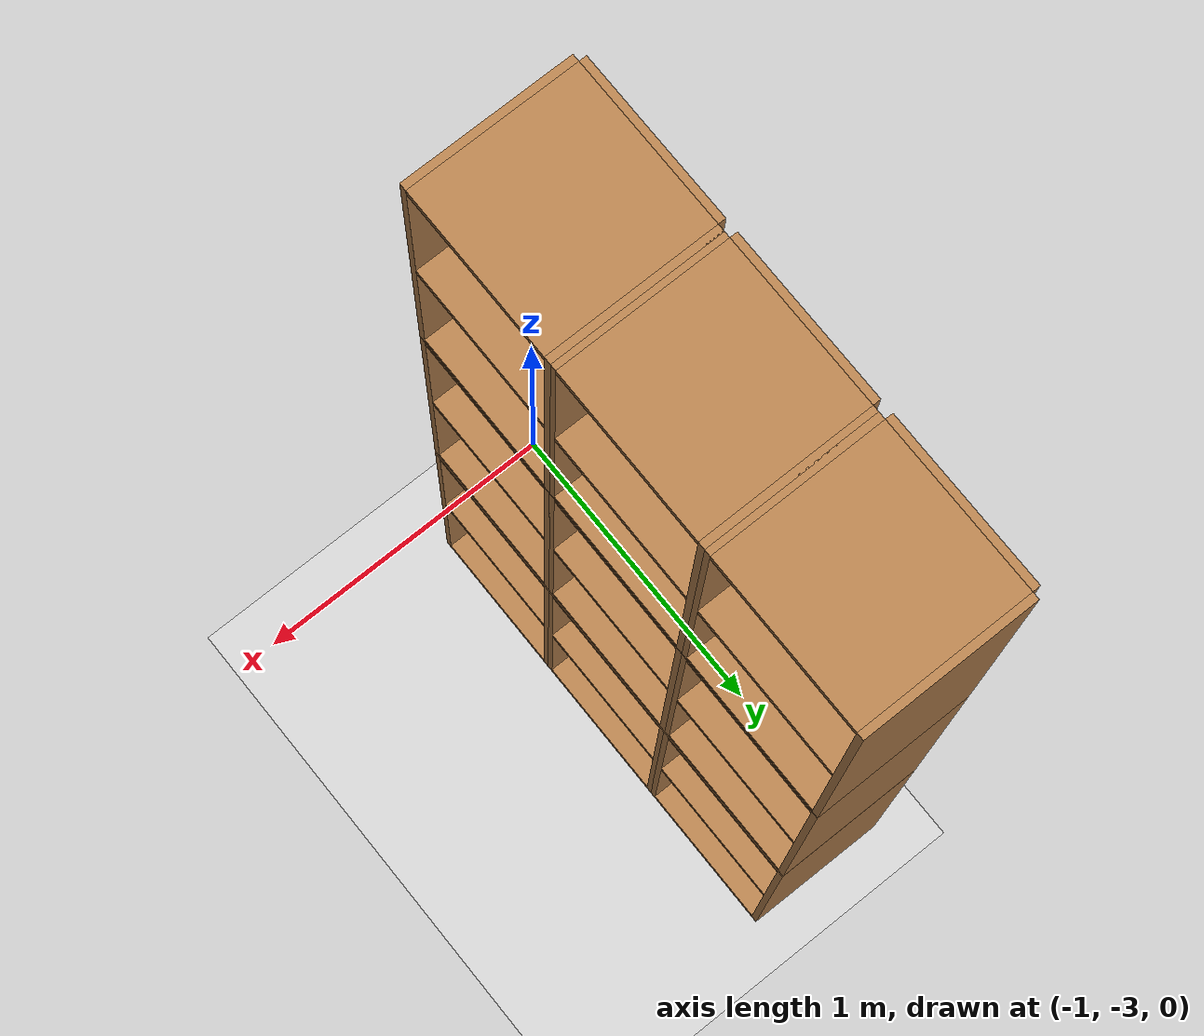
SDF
<sdf version="1.6">
 <world name="default">
  <model name="ground_plane">
   <static>1</static>
   <link name="link">
    <collision name="collision">
     <geometry><plane><normal>0 0 1</normal><size>100 100</size></plane></geometry>
     <surface>
      <contact><collide_bitmask>65535</collide_bitmask></contact>
      <friction><ode><mu>100</mu><mu2>50</mu2></ode></friction>
     </surface>
    </collision>
    <visual name="visual">
     <cast_shadows>0</cast_shadows>
     <geometry><plane><normal>0 0 1</normal><size>100 100</size></plane></geometry>
     <material>
      <script><uri>file://media/materials/scripts/gazebo.material</uri><name>Gazebo/Grey</name></script>
     </material>
    </visual>
   </link>
  </model>
  <model name="Locker18_clone_4_clone_2_clone_1_clone_clone_clone_2_clone_clone_2_clone">
   <model name="Locker18">
    <model name="Locker3">
     <model name="cabinet">
      <static>1</static>
      <link name="cabinet_bottom_plate">
       <inertial>
        <pose>0 0 -1 0 -0 0</pose>
        <inertia><ixx>2.05</ixx><ixy>0</ixy><ixz>0</ixz><iyy>2.05</iyy><iyz>0</iyz><izz>2.05</izz></inertia>
        <mass>25</mass>
       </inertial>
       <collision name="cabinet_bottom_plate_geom">
        <pose>0 0 0.01 0 -0 0</pose>
        <geometry><box><size>0.45 0.45 0.02</size></box></geometry>
       </collision>
       <visual name="cabinet_bottom_plate_geom_visual">
        <pose>0 0 0.01 0 -0 0</pose>
        <geometry><box><size>0.45 0.45 0.02</size></box></geometry>
        <material>
         <script><uri>file://media/materials/scripts/gazebo.material</uri><name>Gazebo/Wood</name></script>
        </material>
       </visual>
       <collision name="cabinet_bottom_plate_geom_cabinet_back_plate">
        <pose>0.235 0 0.51 0 -0 0</pose>
        <geometry><box><size>0.02 0.45 1.02</size></box></geometry>
       </collision>
       <visual name="cabinet_bottom_plate_geom_cabinet_back_plate_visual">
        <pose>0.235 0 0.51 0 -0 0</pose>
        <geometry><box><size>0.02 0.45 1.02</size></box></geometry>
        <material>
         <script><uri>file://media/materials/scripts/gazebo.material</uri><name>Gazebo/Wood</name></script>
        </material>
       </visual>
       <collision name="cabinet_bottom_plate_geom_cabinet_left_plate">
        <pose>0 0.235 0.51 0 -0 0</pose>
        <geometry><box><size>0.45 0.02 1.02</size></box></geometry>
       </collision>
       <visual name="cabinet_bottom_plate_geom_cabinet_left_plate_visual">
        <pose>0 0.235 0.51 0 -0 0</pose>
        <geometry><box><size>0.45 0.02 1.02</size></box></geometry>
        <material>
         <script><uri>file://media/materials/scripts/gazebo.material</uri><name>Gazebo/Wood</name></script>
        </material>
       </visual>
       <collision name="cabinet_bottom_plate_geom_cabinet_middle_plate">
        <pose>0 0 0.51 0 -0 0</pose>
        <geometry><box><size>0.45 0.45 0.02</size></box></geometry>
       </collision>
       <visual name="cabinet_bottom_plate_geom_cabinet_middle_plate_visual">
        <pose>0 0 0.51 0 -0 0</pose>
        <geometry><box><size>0.45 0.45 0.02</size></box></geometry>
        <material>
         <script><uri>file://media/materials/scripts/gazebo.material</uri><name>Gazebo/Wood</name></script>
        </material>
       </visual>
       <collision name="cabinet_bottom_plate_geom_cabinet_right_plate">
        <pose>0 -0.235 0.51 0 -0 0</pose>
        <geometry><box><size>0.45 0.02 1.02</size></box></geometry>
       </collision>
       <visual name="cabinet_bottom_plate_geom_cabinet_right_plate_visual">
        <pose>0 -0.235 0.51 0 -0 0</pose>
        <geometry><box><size>0.45 0.02 1.02</size></box></geometry>
        <material>
         <script><uri>file://media/materials/scripts/gazebo.material</uri><name>Gazebo/Wood</name></script>
        </material>
       </visual>
       <collision name="cabinet_bottom_plate_geom_cabinet_top_plate">
        <pose>0 0 1.01 0 -0 0</pose>
        <geometry><box><size>0.45 0.45 0.02</size></box></geometry>
       </collision>
       <visual name="cabinet_bottom_plate_geom_cabinet_top_plate_visual">
        <pose>0 0 1.01 0 -0 0</pose>
        <geometry><box><size>0.45 0.45 0.02</size></box></geometry>
        <material>
         <script><uri>file://media/materials/scripts/gazebo.material</uri><name>Gazebo/Wood</name></script>
        </material>
       </visual>
      </link>
      <pose>-0.676968 1.45758 0 0 -0 0</pose>
     </model>
     <model name="cabinet_clone">
      <static>1</static>
      <link name="cabinet_bottom_plate">
       <inertial>
        <pose>0 0 -1 0 -0 0</pose>
        <inertia><ixx>2.05</ixx><ixy>0</ixy><ixz>0</ixz><iyy>2.05</iyy><iyz>0</iyz><izz>2.05</izz></inertia>
        <mass>25</mass>
       </inertial>
       <collision name="cabinet_bottom_plate_geom">
        <pose>0 0 0.01 0 -0 0</pose>
        <geometry><box><size>0.45 0.45 0.02</size></box></geometry>
       </collision>
       <visual name="cabinet_bottom_plate_geom_visual">
        <pose>0 0 0.01 0 -0 0</pose>
        <geometry><box><size>0.45 0.45 0.02</size></box></geometry>
        <material>
         <script><uri>file://media/materials/scripts/gazebo.material</uri><name>Gazebo/Wood</name></script>
        </material>
       </visual>
       <collision name="cabinet_bottom_plate_geom_cabinet_back_plate">
        <pose>0.235 0 0.51 0 -0 0</pose>
        <geometry><box><size>0.02 0.45 1.02</size></box></geometry>
       </collision>
       <visual name="cabinet_bottom_plate_geom_cabinet_back_plate_visual">
        <pose>0.235 0 0.51 0 -0 0</pose>
        <geometry><box><size>0.02 0.45 1.02</size></box></geometry>
        <material>
         <script><uri>file://media/materials/scripts/gazebo.material</uri><name>Gazebo/Wood</name></script>
        </material>
       </visual>
       <collision name="cabinet_bottom_plate_geom_cabinet_left_plate">
        <pose>0 0.235 0.51 0 -0 0</pose>
        <geometry><box><size>0.45 0.02 1.02</size></box></geometry>
       </collision>
       <visual name="cabinet_bottom_plate_geom_cabinet_left_plate_visual">
        <pose>0 0.235 0.51 0 -0 0</pose>
        <geometry><box><size>0.45 0.02 1.02</size></box></geometry>
        <material>
         <script><uri>file://media/materials/scripts/gazebo.material</uri><name>Gazebo/Wood</name></script>
        </material>
       </visual>
       <collision name="cabinet_bottom_plate_geom_cabinet_middle_plate">
        <pose>0 0 0.51 0 -0 0</pose>
        <geometry><box><size>0.45 0.45 0.02</size></box></geometry>
       </collision>
       <visual name="cabinet_bottom_plate_geom_cabinet_middle_plate_visual">
        <pose>0 0 0.51 0 -0 0</pose>
        <geometry><box><size>0.45 0.45 0.02</size></box></geometry>
        <material>
         <script><uri>file://media/materials/scripts/gazebo.material</uri><name>Gazebo/Wood</name></script>
        </material>
       </visual>
       <collision name="cabinet_bottom_plate_geom_cabinet_right_plate">
        <pose>0 -0.235 0.51 0 -0 0</pose>
        <geometry><box><size>0.45 0.02 1.02</size></box></geometry>
       </collision>
       <visual name="cabinet_bottom_plate_geom_cabinet_right_plate_visual">
        <pose>0 -0.235 0.51 0 -0 0</pose>
        <geometry><box><size>0.45 0.02 1.02</size></box></geometry>
        <material>
         <script><uri>file://media/materials/scripts/gazebo.material</uri><name>Gazebo/Wood</name></script>
        </material>
       </visual>
       <collision name="cabinet_bottom_plate_geom_cabinet_top_plate">
        <pose>0 0 1.01 0 -0 0</pose>
        <geometry><box><size>0.45 0.45 0.02</size></box></geometry>
       </collision>
       <visual name="cabinet_bottom_plate_geom_cabinet_top_plate_visual">
        <pose>0 0 1.01 0 -0 0</pose>
        <geometry><box><size>0.45 0.45 0.02</size></box></geometry>
        <material>
         <script><uri>file://media/materials/scripts/gazebo.material</uri><name>Gazebo/Wood</name></script>
        </material>
       </visual>
      </link>
      <pose>-0.676968 0.970971 0 0 -0 0</pose>
     </model>
     <model name="cabinet_clone_0">
      <static>1</static>
      <link name="cabinet_bottom_plate">
       <inertial>
        <pose>0 0 -1 0 -0 0</pose>
        <inertia><ixx>2.05</ixx><ixy>0</ixy><ixz>0</ixz><iyy>2.05</iyy><iyz>0</iyz><izz>2.05</izz></inertia>
        <mass>25</mass>
       </inertial>
       <collision name="cabinet_bottom_plate_geom">
        <pose>0 0 0.01 0 -0 0</pose>
        <geometry><box><size>0.45 0.45 0.02</size></box></geometry>
       </collision>
       <visual name="cabinet_bottom_plate_geom_visual">
        <pose>0 0 0.01 0 -0 0</pose>
        <geometry><box><size>0.45 0.45 0.02</size></box></geometry>
        <material>
         <script><uri>file://media/materials/scripts/gazebo.material</uri><name>Gazebo/Wood</name></script>
        </material>
       </visual>
       <collision name="cabinet_bottom_plate_geom_cabinet_back_plate">
        <pose>0.235 0 0.51 0 -0 0</pose>
        <geometry><box><size>0.02 0.45 1.02</size></box></geometry>
       </collision>
       <visual name="cabinet_bottom_plate_geom_cabinet_back_plate_visual">
        <pose>0.235 0 0.51 0 -0 0</pose>
        <geometry><box><size>0.02 0.45 1.02</size></box></geometry>
        <material>
         <script><uri>file://media/materials/scripts/gazebo.material</uri><name>Gazebo/Wood</name></script>
        </material>
       </visual>
       <collision name="cabinet_bottom_plate_geom_cabinet_left_plate">
        <pose>0 0.235 0.51 0 -0 0</pose>
        <geometry><box><size>0.45 0.02 1.02</size></box></geometry>
       </collision>
       <visual name="cabinet_bottom_plate_geom_cabinet_left_plate_visual">
        <pose>0 0.235 0.51 0 -0 0</pose>
        <geometry><box><size>0.45 0.02 1.02</size></box></geometry>
        <material>
         <script><uri>file://media/materials/scripts/gazebo.material</uri><name>Gazebo/Wood</name></script>
        </material>
       </visual>
       <collision name="cabinet_bottom_plate_geom_cabinet_middle_plate">
        <pose>0 0 0.51 0 -0 0</pose>
        <geometry><box><size>0.45 0.45 0.02</size></box></geometry>
       </collision>
       <visual name="cabinet_bottom_plate_geom_cabinet_middle_plate_visual">
        <pose>0 0 0.51 0 -0 0</pose>
        <geometry><box><size>0.45 0.45 0.02</size></box></geometry>
        <material>
         <script><uri>file://media/materials/scripts/gazebo.material</uri><name>Gazebo/Wood</name></script>
        </material>
       </visual>
       <collision name="cabinet_bottom_plate_geom_cabinet_right_plate">
        <pose>0 -0.235 0.51 0 -0 0</pose>
        <geometry><box><size>0.45 0.02 1.02</size></box></geometry>
       </collision>
       <visual name="cabinet_bottom_plate_geom_cabinet_right_plate_visual">
        <pose>0 -0.235 0.51 0 -0 0</pose>
        <geometry><box><size>0.45 0.02 1.02</size></box></geometry>
        <material>
         <script><uri>file://media/materials/scripts/gazebo.material</uri><name>Gazebo/Wood</name></script>
        </material>
       </visual>
       <collision name="cabinet_bottom_plate_geom_cabinet_top_plate">
        <pose>0 0 1.01 0 -0 0</pose>
        <geometry><box><size>0.45 0.45 0.02</size></box></geometry>
       </collision>
       <visual name="cabinet_bottom_plate_geom_cabinet_top_plate_visual">
        <pose>0 0 1.01 0 -0 0</pose>
        <geometry><box><size>0.45 0.45 0.02</size></box></geometry>
        <material>
         <script><uri>file://media/materials/scripts/gazebo.material</uri><name>Gazebo/Wood</name></script>
        </material>
       </visual>
      </link>
      <pose>-0.676968 0.48391 0 0 -0 0</pose>
     </model>
     <static>0</static>
     <pose>0 3e-06 -1.02763 0 -0 0</pose>
    </model>
    <model name="Locker3_clone">
     <model name="cabinet">
      <static>1</static>
      <link name="cabinet_bottom_plate">
       <inertial>
        <pose>0 0 -1 0 -0 0</pose>
        <inertia><ixx>2.05</ixx><ixy>0</ixy><ixz>0</ixz><iyy>2.05</iyy><iyz>0</iyz><izz>2.05</izz></inertia>
        <mass>25</mass>
       </inertial>
       <collision name="cabinet_bottom_plate_geom">
        <pose>0 0 0.01 0 -0 0</pose>
        <geometry><box><size>0.45 0.45 0.02</size></box></geometry>
       </collision>
       <visual name="cabinet_bottom_plate_geom_visual">
        <pose>0 0 0.01 0 -0 0</pose>
        <geometry><box><size>0.45 0.45 0.02</size></box></geometry>
        <material>
         <script><uri>file://media/materials/scripts/gazebo.material</uri><name>Gazebo/Wood</name></script>
        </material>
       </visual>
       <collision name="cabinet_bottom_plate_geom_cabinet_back_plate">
        <pose>0.235 0 0.51 0 -0 0</pose>
        <geometry><box><size>0.02 0.45 1.02</size></box></geometry>
       </collision>
       <visual name="cabinet_bottom_plate_geom_cabinet_back_plate_visual">
        <pose>0.235 0 0.51 0 -0 0</pose>
        <geometry><box><size>0.02 0.45 1.02</size></box></geometry>
        <material>
         <script><uri>file://media/materials/scripts/gazebo.material</uri><name>Gazebo/Wood</name></script>
        </material>
       </visual>
       <collision name="cabinet_bottom_plate_geom_cabinet_left_plate">
        <pose>0 0.235 0.51 0 -0 0</pose>
        <geometry><box><size>0.45 0.02 1.02</size></box></geometry>
       </collision>
       <visual name="cabinet_bottom_plate_geom_cabinet_left_plate_visual">
        <pose>0 0.235 0.51 0 -0 0</pose>
        <geometry><box><size>0.45 0.02 1.02</size></box></geometry>
        <material>
         <script><uri>file://media/materials/scripts/gazebo.material</uri><name>Gazebo/Wood</name></script>
        </material>
       </visual>
       <collision name="cabinet_bottom_plate_geom_cabinet_middle_plate">
        <pose>0 0 0.51 0 -0 0</pose>
        <geometry><box><size>0.45 0.45 0.02</size></box></geometry>
       </collision>
       <visual name="cabinet_bottom_plate_geom_cabinet_middle_plate_visual">
        <pose>0 0 0.51 0 -0 0</pose>
        <geometry><box><size>0.45 0.45 0.02</size></box></geometry>
        <material>
         <script><uri>file://media/materials/scripts/gazebo.material</uri><name>Gazebo/Wood</name></script>
        </material>
       </visual>
       <collision name="cabinet_bottom_plate_geom_cabinet_right_plate">
        <pose>0 -0.235 0.51 0 -0 0</pose>
        <geometry><box><size>0.45 0.02 1.02</size></box></geometry>
       </collision>
       <visual name="cabinet_bottom_plate_geom_cabinet_right_plate_visual">
        <pose>0 -0.235 0.51 0 -0 0</pose>
        <geometry><box><size>0.45 0.02 1.02</size></box></geometry>
        <material>
         <script><uri>file://media/materials/scripts/gazebo.material</uri><name>Gazebo/Wood</name></script>
        </material>
       </visual>
       <collision name="cabinet_bottom_plate_geom_cabinet_top_plate">
        <pose>0 0 1.01 0 -0 0</pose>
        <geometry><box><size>0.45 0.45 0.02</size></box></geometry>
       </collision>
       <visual name="cabinet_bottom_plate_geom_cabinet_top_plate_visual">
        <pose>0 0 1.01 0 -0 0</pose>
        <geometry><box><size>0.45 0.45 0.02</size></box></geometry>
        <material>
         <script><uri>file://media/materials/scripts/gazebo.material</uri><name>Gazebo/Wood</name></script>
        </material>
       </visual>
      </link>
      <pose>-0.676968 1.45758 0 0 -0 0</pose>
     </model>
     <model name="cabinet_clone">
      <static>1</static>
      <link name="cabinet_bottom_plate">
       <inertial>
        <pose>0 0 -1 0 -0 0</pose>
        <inertia><ixx>2.05</ixx><ixy>0</ixy><ixz>0</ixz><iyy>2.05</iyy><iyz>0</iyz><izz>2.05</izz></inertia>
        <mass>25</mass>
       </inertial>
       <collision name="cabinet_bottom_plate_geom">
        <pose>0 0 0.01 0 -0 0</pose>
        <geometry><box><size>0.45 0.45 0.02</size></box></geometry>
       </collision>
       <visual name="cabinet_bottom_plate_geom_visual">
        <pose>0 0 0.01 0 -0 0</pose>
        <geometry><box><size>0.45 0.45 0.02</size></box></geometry>
        <material>
         <script><uri>file://media/materials/scripts/gazebo.material</uri><name>Gazebo/Wood</name></script>
        </material>
       </visual>
       <collision name="cabinet_bottom_plate_geom_cabinet_back_plate">
        <pose>0.235 0 0.51 0 -0 0</pose>
        <geometry><box><size>0.02 0.45 1.02</size></box></geometry>
       </collision>
       <visual name="cabinet_bottom_plate_geom_cabinet_back_plate_visual">
        <pose>0.235 0 0.51 0 -0 0</pose>
        <geometry><box><size>0.02 0.45 1.02</size></box></geometry>
        <material>
         <script><uri>file://media/materials/scripts/gazebo.material</uri><name>Gazebo/Wood</name></script>
        </material>
       </visual>
       <collision name="cabinet_bottom_plate_geom_cabinet_left_plate">
        <pose>0 0.235 0.51 0 -0 0</pose>
        <geometry><box><size>0.45 0.02 1.02</size></box></geometry>
       </collision>
       <visual name="cabinet_bottom_plate_geom_cabinet_left_plate_visual">
        <pose>0 0.235 0.51 0 -0 0</pose>
        <geometry><box><size>0.45 0.02 1.02</size></box></geometry>
        <material>
         <script><uri>file://media/materials/scripts/gazebo.material</uri><name>Gazebo/Wood</name></script>
        </material>
       </visual>
       <collision name="cabinet_bottom_plate_geom_cabinet_middle_plate">
        <pose>0 0 0.51 0 -0 0</pose>
        <geometry><box><size>0.45 0.45 0.02</size></box></geometry>
       </collision>
       <visual name="cabinet_bottom_plate_geom_cabinet_middle_plate_visual">
        <pose>0 0 0.51 0 -0 0</pose>
        <geometry><box><size>0.45 0.45 0.02</size></box></geometry>
        <material>
         <script><uri>file://media/materials/scripts/gazebo.material</uri><name>Gazebo/Wood</name></script>
        </material>
       </visual>
       <collision name="cabinet_bottom_plate_geom_cabinet_right_plate">
        <pose>0 -0.235 0.51 0 -0 0</pose>
        <geometry><box><size>0.45 0.02 1.02</size></box></geometry>
       </collision>
       <visual name="cabinet_bottom_plate_geom_cabinet_right_plate_visual">
        <pose>0 -0.235 0.51 0 -0 0</pose>
        <geometry><box><size>0.45 0.02 1.02</size></box></geometry>
        <material>
         <script><uri>file://media/materials/scripts/gazebo.material</uri><name>Gazebo/Wood</name></script>
        </material>
       </visual>
       <collision name="cabinet_bottom_plate_geom_cabinet_top_plate">
        <pose>0 0 1.01 0 -0 0</pose>
        <geometry><box><size>0.45 0.45 0.02</size></box></geometry>
       </collision>
       <visual name="cabinet_bottom_plate_geom_cabinet_top_plate_visual">
        <pose>0 0 1.01 0 -0 0</pose>
        <geometry><box><size>0.45 0.45 0.02</size></box></geometry>
        <material>
         <script><uri>file://media/materials/scripts/gazebo.material</uri><name>Gazebo/Wood</name></script>
        </material>
       </visual>
      </link>
      <pose>-0.676968 0.970971 0 0 -0 0</pose>
     </model>
     <model name="cabinet_clone_0">
      <static>1</static>
      <link name="cabinet_bottom_plate">
       <inertial>
        <pose>0 0 -1 0 -0 0</pose>
        <inertia><ixx>2.05</ixx><ixy>0</ixy><ixz>0</ixz><iyy>2.05</iyy><iyz>0</iyz><izz>2.05</izz></inertia>
        <mass>25</mass>
       </inertial>
       <collision name="cabinet_bottom_plate_geom">
        <pose>0 0 0.01 0 -0 0</pose>
        <geometry><box><size>0.45 0.45 0.02</size></box></geometry>
       </collision>
       <visual name="cabinet_bottom_plate_geom_visual">
        <pose>0 0 0.01 0 -0 0</pose>
        <geometry><box><size>0.45 0.45 0.02</size></box></geometry>
        <material>
         <script><uri>file://media/materials/scripts/gazebo.material</uri><name>Gazebo/Wood</name></script>
        </material>
       </visual>
       <collision name="cabinet_bottom_plate_geom_cabinet_back_plate">
        <pose>0.235 0 0.51 0 -0 0</pose>
        <geometry><box><size>0.02 0.45 1.02</size></box></geometry>
       </collision>
       <visual name="cabinet_bottom_plate_geom_cabinet_back_plate_visual">
        <pose>0.235 0 0.51 0 -0 0</pose>
        <geometry><box><size>0.02 0.45 1.02</size></box></geometry>
        <material>
         <script><uri>file://media/materials/scripts/gazebo.material</uri><name>Gazebo/Wood</name></script>
        </material>
       </visual>
       <collision name="cabinet_bottom_plate_geom_cabinet_left_plate">
        <pose>0 0.235 0.51 0 -0 0</pose>
        <geometry><box><size>0.45 0.02 1.02</size></box></geometry>
       </collision>
       <visual name="cabinet_bottom_plate_geom_cabinet_left_plate_visual">
        <pose>0 0.235 0.51 0 -0 0</pose>
        <geometry><box><size>0.45 0.02 1.02</size></box></geometry>
        <material>
         <script><uri>file://media/materials/scripts/gazebo.material</uri><name>Gazebo/Wood</name></script>
        </material>
       </visual>
       <collision name="cabinet_bottom_plate_geom_cabinet_middle_plate">
        <pose>0 0 0.51 0 -0 0</pose>
        <geometry><box><size>0.45 0.45 0.02</size></box></geometry>
       </collision>
       <visual name="cabinet_bottom_plate_geom_cabinet_middle_plate_visual">
        <pose>0 0 0.51 0 -0 0</pose>
        <geometry><box><size>0.45 0.45 0.02</size></box></geometry>
        <material>
         <script><uri>file://media/materials/scripts/gazebo.material</uri><name>Gazebo/Wood</name></script>
        </material>
       </visual>
       <collision name="cabinet_bottom_plate_geom_cabinet_right_plate">
        <pose>0 -0.235 0.51 0 -0 0</pose>
        <geometry><box><size>0.45 0.02 1.02</size></box></geometry>
       </collision>
       <visual name="cabinet_bottom_plate_geom_cabinet_right_plate_visual">
        <pose>0 -0.235 0.51 0 -0 0</pose>
        <geometry><box><size>0.45 0.02 1.02</size></box></geometry>
        <material>
         <script><uri>file://media/materials/scripts/gazebo.material</uri><name>Gazebo/Wood</name></script>
        </material>
       </visual>
       <collision name="cabinet_bottom_plate_geom_cabinet_top_plate">
        <pose>0 0 1.01 0 -0 0</pose>
        <geometry><box><size>0.45 0.45 0.02</size></box></geometry>
       </collision>
       <visual name="cabinet_bottom_plate_geom_cabinet_top_plate_visual">
        <pose>0 0 1.01 0 -0 0</pose>
        <geometry><box><size>0.45 0.45 0.02</size></box></geometry>
        <material>
         <script><uri>file://media/materials/scripts/gazebo.material</uri><name>Gazebo/Wood</name></script>
        </material>
       </visual>
      </link>
      <pose>-0.676968 0.48391 0 0 -0 0</pose>
     </model>
     <static>0</static>
     <pose>0 3e-06 0.003717 0 -0 0</pose>
    </model>
    <model name="Locker3_clone_clone">
     <model name="cabinet">
      <static>1</static>
      <link name="cabinet_bottom_plate">
       <inertial>
        <pose>0 0 -1 0 -0 0</pose>
        <inertia><ixx>2.05</ixx><ixy>0</ixy><ixz>0</ixz><iyy>2.05</iyy><iyz>0</iyz><izz>2.05</izz></inertia>
        <mass>25</mass>
       </inertial>
       <collision name="cabinet_bottom_plate_geom">
        <pose>0 0 0.01 0 -0 0</pose>
        <geometry><box><size>0.45 0.45 0.02</size></box></geometry>
       </collision>
       <visual name="cabinet_bottom_plate_geom_visual">
        <pose>0 0 0.01 0 -0 0</pose>
        <geometry><box><size>0.45 0.45 0.02</size></box></geometry>
        <material>
         <script><uri>file://media/materials/scripts/gazebo.material</uri><name>Gazebo/Wood</name></script>
        </material>
       </visual>
       <collision name="cabinet_bottom_plate_geom_cabinet_back_plate">
        <pose>0.235 0 0.51 0 -0 0</pose>
        <geometry><box><size>0.02 0.45 1.02</size></box></geometry>
       </collision>
       <visual name="cabinet_bottom_plate_geom_cabinet_back_plate_visual">
        <pose>0.235 0 0.51 0 -0 0</pose>
        <geometry><box><size>0.02 0.45 1.02</size></box></geometry>
        <material>
         <script><uri>file://media/materials/scripts/gazebo.material</uri><name>Gazebo/Wood</name></script>
        </material>
       </visual>
       <collision name="cabinet_bottom_plate_geom_cabinet_left_plate">
        <pose>0 0.235 0.51 0 -0 0</pose>
        <geometry><box><size>0.45 0.02 1.02</size></box></geometry>
       </collision>
       <visual name="cabinet_bottom_plate_geom_cabinet_left_plate_visual">
        <pose>0 0.235 0.51 0 -0 0</pose>
        <geometry><box><size>0.45 0.02 1.02</size></box></geometry>
        <material>
         <script><uri>file://media/materials/scripts/gazebo.material</uri><name>Gazebo/Wood</name></script>
        </material>
       </visual>
       <collision name="cabinet_bottom_plate_geom_cabinet_middle_plate">
        <pose>0 0 0.51 0 -0 0</pose>
        <geometry><box><size>0.45 0.45 0.02</size></box></geometry>
       </collision>
       <visual name="cabinet_bottom_plate_geom_cabinet_middle_plate_visual">
        <pose>0 0 0.51 0 -0 0</pose>
        <geometry><box><size>0.45 0.45 0.02</size></box></geometry>
        <material>
         <script><uri>file://media/materials/scripts/gazebo.material</uri><name>Gazebo/Wood</name></script>
        </material>
       </visual>
       <collision name="cabinet_bottom_plate_geom_cabinet_right_plate">
        <pose>0 -0.235 0.51 0 -0 0</pose>
        <geometry><box><size>0.45 0.02 1.02</size></box></geometry>
       </collision>
       <visual name="cabinet_bottom_plate_geom_cabinet_right_plate_visual">
        <pose>0 -0.235 0.51 0 -0 0</pose>
        <geometry><box><size>0.45 0.02 1.02</size></box></geometry>
        <material>
         <script><uri>file://media/materials/scripts/gazebo.material</uri><name>Gazebo/Wood</name></script>
        </material>
       </visual>
       <collision name="cabinet_bottom_plate_geom_cabinet_top_plate">
        <pose>0 0 1.01 0 -0 0</pose>
        <geometry><box><size>0.45 0.45 0.02</size></box></geometry>
       </collision>
       <visual name="cabinet_bottom_plate_geom_cabinet_top_plate_visual">
        <pose>0 0 1.01 0 -0 0</pose>
        <geometry><box><size>0.45 0.45 0.02</size></box></geometry>
        <material>
         <script><uri>file://media/materials/scripts/gazebo.material</uri><name>Gazebo/Wood</name></script>
        </material>
       </visual>
      </link>
      <pose>-0.676968 1.45758 0 0 -0 0</pose>
     </model>
     <model name="cabinet_clone">
      <static>1</static>
      <link name="cabinet_bottom_plate">
       <inertial>
        <pose>0 0 -1 0 -0 0</pose>
        <inertia><ixx>2.05</ixx><ixy>0</ixy><ixz>0</ixz><iyy>2.05</iyy><iyz>0</iyz><izz>2.05</izz></inertia>
        <mass>25</mass>
       </inertial>
       <collision name="cabinet_bottom_plate_geom">
        <pose>0 0 0.01 0 -0 0</pose>
        <geometry><box><size>0.45 0.45 0.02</size></box></geometry>
       </collision>
       <visual name="cabinet_bottom_plate_geom_visual">
        <pose>0 0 0.01 0 -0 0</pose>
        <geometry><box><size>0.45 0.45 0.02</size></box></geometry>
        <material>
         <script><uri>file://media/materials/scripts/gazebo.material</uri><name>Gazebo/Wood</name></script>
        </material>
       </visual>
       <collision name="cabinet_bottom_plate_geom_cabinet_back_plate">
        <pose>0.235 0 0.51 0 -0 0</pose>
        <geometry><box><size>0.02 0.45 1.02</size></box></geometry>
       </collision>
       <visual name="cabinet_bottom_plate_geom_cabinet_back_plate_visual">
        <pose>0.235 0 0.51 0 -0 0</pose>
        <geometry><box><size>0.02 0.45 1.02</size></box></geometry>
        <material>
         <script><uri>file://media/materials/scripts/gazebo.material</uri><name>Gazebo/Wood</name></script>
        </material>
       </visual>
       <collision name="cabinet_bottom_plate_geom_cabinet_left_plate">
        <pose>0 0.235 0.51 0 -0 0</pose>
        <geometry><box><size>0.45 0.02 1.02</size></box></geometry>
       </collision>
       <visual name="cabinet_bottom_plate_geom_cabinet_left_plate_visual">
        <pose>0 0.235 0.51 0 -0 0</pose>
        <geometry><box><size>0.45 0.02 1.02</size></box></geometry>
        <material>
         <script><uri>file://media/materials/scripts/gazebo.material</uri><name>Gazebo/Wood</name></script>
        </material>
       </visual>
       <collision name="cabinet_bottom_plate_geom_cabinet_middle_plate">
        <pose>0 0 0.51 0 -0 0</pose>
        <geometry><box><size>0.45 0.45 0.02</size></box></geometry>
       </collision>
       <visual name="cabinet_bottom_plate_geom_cabinet_middle_plate_visual">
        <pose>0 0 0.51 0 -0 0</pose>
        <geometry><box><size>0.45 0.45 0.02</size></box></geometry>
        <material>
         <script><uri>file://media/materials/scripts/gazebo.material</uri><name>Gazebo/Wood</name></script>
        </material>
       </visual>
       <collision name="cabinet_bottom_plate_geom_cabinet_right_plate">
        <pose>0 -0.235 0.51 0 -0 0</pose>
        <geometry><box><size>0.45 0.02 1.02</size></box></geometry>
       </collision>
       <visual name="cabinet_bottom_plate_geom_cabinet_right_plate_visual">
        <pose>0 -0.235 0.51 0 -0 0</pose>
        <geometry><box><size>0.45 0.02 1.02</size></box></geometry>
        <material>
         <script><uri>file://media/materials/scripts/gazebo.material</uri><name>Gazebo/Wood</name></script>
        </material>
       </visual>
       <collision name="cabinet_bottom_plate_geom_cabinet_top_plate">
        <pose>0 0 1.01 0 -0 0</pose>
        <geometry><box><size>0.45 0.45 0.02</size></box></geometry>
       </collision>
       <visual name="cabinet_bottom_plate_geom_cabinet_top_plate_visual">
        <pose>0 0 1.01 0 -0 0</pose>
        <geometry><box><size>0.45 0.45 0.02</size></box></geometry>
        <material>
         <script><uri>file://media/materials/scripts/gazebo.material</uri><name>Gazebo/Wood</name></script>
        </material>
       </visual>
      </link>
      <pose>-0.676968 0.970971 0 0 -0 0</pose>
     </model>
     <model name="cabinet_clone_0">
      <static>1</static>
      <link name="cabinet_bottom_plate">
       <inertial>
        <pose>0 0 -1 0 -0 0</pose>
        <inertia><ixx>2.05</ixx><ixy>0</ixy><ixz>0</ixz><iyy>2.05</iyy><iyz>0</iyz><izz>2.05</izz></inertia>
        <mass>25</mass>
       </inertial>
       <collision name="cabinet_bottom_plate_geom">
        <pose>0 0 0.01 0 -0 0</pose>
        <geometry><box><size>0.45 0.45 0.02</size></box></geometry>
       </collision>
       <visual name="cabinet_bottom_plate_geom_visual">
        <pose>0 0 0.01 0 -0 0</pose>
        <geometry><box><size>0.45 0.45 0.02</size></box></geometry>
        <material>
         <script><uri>file://media/materials/scripts/gazebo.material</uri><name>Gazebo/Wood</name></script>
        </material>
       </visual>
       <collision name="cabinet_bottom_plate_geom_cabinet_back_plate">
        <pose>0.235 0 0.51 0 -0 0</pose>
        <geometry><box><size>0.02 0.45 1.02</size></box></geometry>
       </collision>
       <visual name="cabinet_bottom_plate_geom_cabinet_back_plate_visual">
        <pose>0.235 0 0.51 0 -0 0</pose>
        <geometry><box><size>0.02 0.45 1.02</size></box></geometry>
        <material>
         <script><uri>file://media/materials/scripts/gazebo.material</uri><name>Gazebo/Wood</name></script>
        </material>
       </visual>
       <collision name="cabinet_bottom_plate_geom_cabinet_left_plate">
        <pose>0 0.235 0.51 0 -0 0</pose>
        <geometry><box><size>0.45 0.02 1.02</size></box></geometry>
       </collision>
       <visual name="cabinet_bottom_plate_geom_cabinet_left_plate_visual">
        <pose>0 0.235 0.51 0 -0 0</pose>
        <geometry><box><size>0.45 0.02 1.02</size></box></geometry>
        <material>
         <script><uri>file://media/materials/scripts/gazebo.material</uri><name>Gazebo/Wood</name></script>
        </material>
       </visual>
       <collision name="cabinet_bottom_plate_geom_cabinet_middle_plate">
        <pose>0 0 0.51 0 -0 0</pose>
        <geometry><box><size>0.45 0.45 0.02</size></box></geometry>
       </collision>
       <visual name="cabinet_bottom_plate_geom_cabinet_middle_plate_visual">
        <pose>0 0 0.51 0 -0 0</pose>
        <geometry><box><size>0.45 0.45 0.02</size></box></geometry>
        <material>
         <script><uri>file://media/materials/scripts/gazebo.material</uri><name>Gazebo/Wood</name></script>
        </material>
       </visual>
       <collision name="cabinet_bottom_plate_geom_cabinet_right_plate">
        <pose>0 -0.235 0.51 0 -0 0</pose>
        <geometry><box><size>0.45 0.02 1.02</size></box></geometry>
       </collision>
       <visual name="cabinet_bottom_plate_geom_cabinet_right_plate_visual">
        <pose>0 -0.235 0.51 0 -0 0</pose>
        <geometry><box><size>0.45 0.02 1.02</size></box></geometry>
        <material>
         <script><uri>file://media/materials/scripts/gazebo.material</uri><name>Gazebo/Wood</name></script>
        </material>
       </visual>
       <collision name="cabinet_bottom_plate_geom_cabinet_top_plate">
        <pose>0 0 1.01 0 -0 0</pose>
        <geometry><box><size>0.45 0.45 0.02</size></box></geometry>
       </collision>
       <visual name="cabinet_bottom_plate_geom_cabinet_top_plate_visual">
        <pose>0 0 1.01 0 -0 0</pose>
        <geometry><box><size>0.45 0.45 0.02</size></box></geometry>
        <material>
         <script><uri>file://media/materials/scripts/gazebo.material</uri><name>Gazebo/Wood</name></script>
        </material>
       </visual>
      </link>
      <pose>-0.676968 0.48391 0 0 -0 0</pose>
     </model>
     <static>0</static>
     <pose>0 3e-06 1.02391 0 -0 0</pose>
    </model>
    <static>0</static>
    <pose>-0 4e-06 4e-06 0 -0 0</pose>
   </model>
   <static>0</static>
   <pose>-1.4992 -1.20857 1.08672 0 -0 3.14119</pose>
  </model>
 </world>
</sdf>
